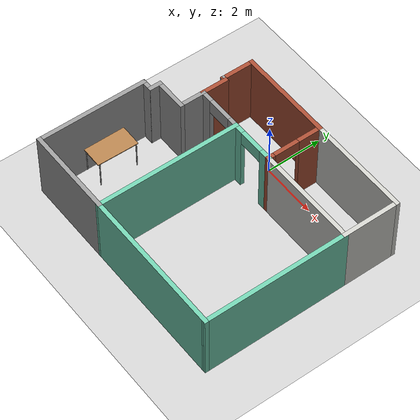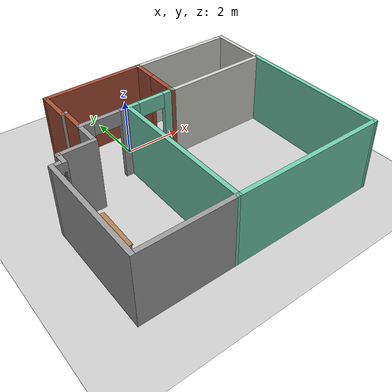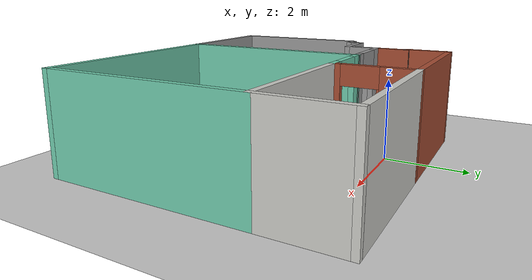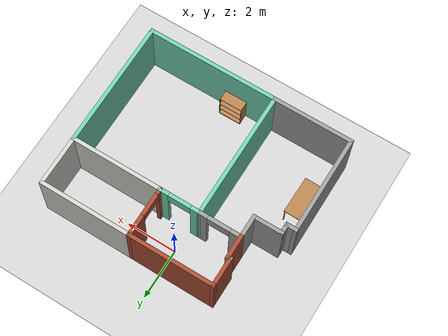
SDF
<sdf version="1.6">
 <world name="default">
  <plugin name="welcome_message" filename="libwelcome_message.so"/>
  <light name="sun" type="directional">
   <pose>0 0 10 0 -0 0</pose>
   <diffuse>0.8 0.8 0.8 1</diffuse>
   <specular>0.2 0.2 0.2 1</specular>
   <attenuation>
    <range>1000</range>
    <constant>0.9</constant>
    <linear>0.01</linear>
    <quadratic>0.001</quadratic>
   </attenuation>
   <direction>-0.5 0.1 -0.9</direction>
  </light>
  <model name="ground_plane">
   <static>1</static>
   <link name="link">
    <collision name="collision">
     <geometry><plane><normal>0 0 1</normal><size>100 100</size></plane></geometry>
     <surface><friction><ode><mu>100</mu><mu2>50</mu2></ode></friction></surface>
    </collision>
    <visual name="visual">
     <cast_shadows>0</cast_shadows>
     <geometry><plane><normal>0 0 1</normal><size>100 100</size></plane></geometry>
     <material>
      <script><uri>file://media/materials/scripts/gazebo.material</uri><name>Gazebo/Grey</name></script>
     </material>
    </visual>
   </link>
  </model>
  <gravity>0 0 -9.8</gravity>
  <magnetic_field>6e-06 2.3e-05 -4.2e-05</magnetic_field>
  <atmosphere type="adiabatic"/>
  <physics name="default_physics" default="0" type="ode">
   <max_step_size>0.001</max_step_size>
   <real_time_factor>1</real_time_factor>
   <real_time_update_rate>1000</real_time_update_rate>
  </physics>
  <scene><ambient>0.4 0.4 0.4 1</ambient><background>0.7 0.7 0.7 1</background><shadows>1</shadows></scene>
  <spherical_coordinates>
   <surface_model>EARTH_WGS84</surface_model>
   <latitude_deg>0</latitude_deg>
   <longitude_deg>0</longitude_deg>
   <elevation>0</elevation>
   <heading_deg>0</heading_deg>
  </spherical_coordinates>
  <model name="model">
   <pose>0.62405 -2.53382 0 0 -0 0</pose>
   <link name="Wall_24">
    <collision name="Wall_24_Collision">
     <geometry><box><size>1.25 0.15 2.5</size></box></geometry>
     <pose>0 0 1.25 0 -0 0</pose>
    </collision>
    <visual name="Wall_24_Visual">
     <pose>0 0 1.25 0 -0 0</pose>
     <geometry><box><size>1.25 0.15 2.5</size></box></geometry>
     <material>
      <script><uri>file://media/materials/scripts/gazebo.material</uri><name>Gazebo/Bricks</name></script>
      <ambient>1 1 1 1</ambient>
     </material>
     <meta><layer>0</layer></meta>
    </visual>
    <pose>-2.79996 2.95018 0 0 0 -1.5708</pose>
   </link>
   <link name="Wall_26">
    <collision name="Wall_26_Collision">
     <geometry><box><size>0.25 0.15 2.5</size></box></geometry>
     <pose>0 0 1.25 0 -0 0</pose>
    </collision>
    <visual name="Wall_26_Visual">
     <pose>0 0 1.25 0 -0 0</pose>
     <geometry><box><size>0.25 0.15 2.5</size></box></geometry>
     <material>
      <script><uri>file://media/materials/scripts/gazebo.material</uri><name>Gazebo/Grey</name></script>
      <ambient>1 1 1 1</ambient>
     </material>
     <meta><layer>0</layer></meta>
    </visual>
    <pose>-2.74996 2.40017 0 0 -0 0</pose>
   </link>
   <link name="Wall_27">
    <collision name="Wall_27_Collision">
     <geometry><box><size>1 0.15 2.5</size></box></geometry>
     <pose>0 0 1.25 0 -0 0</pose>
    </collision>
    <visual name="Wall_27_Visual">
     <pose>0 0 1.25 0 -0 0</pose>
     <geometry><box><size>1 0.15 2.5</size></box></geometry>
     <material>
      <script><uri>file://media/materials/scripts/gazebo.material</uri><name>Gazebo/Bricks</name></script>
      <ambient>1 1 1 1</ambient>
     </material>
     <meta><layer>0</layer></meta>
    </visual>
    <pose>-2.69996 1.97517 0 0 0 -1.5708</pose>
   </link>
   <link name="Wall_28">
    <pose>-1.89996 1.55018 0 0 -0 0</pose>
    <visual name="Wall_28_Visual_0">
     <pose>-0.625185 0 1.25 0 -0 0</pose>
     <geometry><box><size>0.49963 0.15 2.5</size></box></geometry>
     <material>
      <script><uri>file://media/materials/scripts/gazebo.material</uri><name>Gazebo/Grey</name></script>
      <ambient>1 1 1 1</ambient>
     </material>
     <meta><layer>0</layer></meta>
    </visual>
    <collision name="Wall_28_Collision_0">
     <geometry><box><size>0.49963 0.15 2.5</size></box></geometry>
     <pose>-0.625185 0 1.25 0 -0 0</pose>
    </collision>
    <visual name="Wall_28_Visual_1">
     <pose>0.699815 0 1.25 0 -0 0</pose>
     <geometry><box><size>0.35037 0.15 2.5</size></box></geometry>
     <material>
      <script><uri>file://media/materials/scripts/gazebo.material</uri><name>Gazebo/Grey</name></script>
      <ambient>1 1 1 1</ambient>
     </material>
     <meta><layer>0</layer></meta>
    </visual>
    <collision name="Wall_28_Collision_1">
     <geometry><box><size>0.35037 0.15 2.5</size></box></geometry>
     <pose>0.699815 0 1.25 0 -0 0</pose>
    </collision>
    <visual name="Wall_28_Visual_2">
     <pose>0.07463 0 2.25 0 -0 0</pose>
     <geometry><box><size>0.9 0.15 0.5</size></box></geometry>
     <material>
      <script><uri>file://media/materials/scripts/gazebo.material</uri><name>Gazebo/Grey</name></script>
      <ambient>1 1 1 1</ambient>
     </material>
     <meta><layer>0</layer></meta>
    </visual>
    <collision name="Wall_28_Collision_2">
     <geometry><box><size>0.9 0.15 0.5</size></box></geometry>
     <pose>0.07463 0 2.25 0 -0 0</pose>
    </collision>
   </link>
   <link name="Wall_30">
    <collision name="Wall_30_Collision">
     <geometry><box><size>1 0.15 2.5</size></box></geometry>
     <pose>0 0 1.25 0 -0 0</pose>
    </collision>
    <visual name="Wall_30_Visual">
     <pose>0 0 1.25 0 -0 0</pose>
     <geometry><box><size>1 0.15 2.5</size></box></geometry>
     <material>
      <script><uri>file://media/materials/scripts/gazebo.material</uri><name>Gazebo/Grey</name></script>
      <ambient>1 1 1 1</ambient>
     </material>
     <meta><layer>0</layer></meta>
    </visual>
    <pose>-2.69996 1.12518 0 0 0 -1.5708</pose>
   </link>
   <link name="Wall_32">
    <collision name="Wall_32_Collision">
     <geometry><box><size>1.25 0.15 2.5</size></box></geometry>
     <pose>0 0 1.25 0 -0 0</pose>
    </collision>
    <visual name="Wall_32_Visual">
     <pose>0 0 1.25 0 -0 0</pose>
     <geometry><box><size>1.25 0.15 2.5</size></box></geometry>
     <material>
      <script><uri>file://media/materials/scripts/gazebo.material</uri><name>Gazebo/Grey</name></script>
      <ambient>1 1 1 1</ambient>
     </material>
     <meta><layer>0</layer></meta>
    </visual>
    <pose>-3.24996 0.700175 0 0 -0 3.14159</pose>
   </link>
   <link name="Wall_33">
    <collision name="Wall_33_Collision">
     <geometry><box><size>0.5 0.15 2.5</size></box></geometry>
     <pose>0 0 1.25 0 -0 0</pose>
    </collision>
    <visual name="Wall_33_Visual">
     <pose>0 0 1.25 0 -0 0</pose>
     <geometry><box><size>0.5 0.15 2.5</size></box></geometry>
     <material>
      <script><uri>file://media/materials/scripts/gazebo.material</uri><name>Gazebo/Grey</name></script>
      <ambient>1 1 1 1</ambient>
     </material>
     <meta><layer>0</layer></meta>
    </visual>
    <pose>-3.79996 0.525175 0 0 0 -1.5708</pose>
   </link>
   <link name="Wall_34">
    <collision name="Wall_34_Collision">
     <geometry><box><size>0.5 0.15 2.5</size></box></geometry>
     <pose>0 0 1.25 0 -0 0</pose>
    </collision>
    <visual name="Wall_34_Visual">
     <pose>0 0 1.25 0 -0 0</pose>
     <geometry><box><size>0.5 0.15 2.5</size></box></geometry>
     <material>
      <script><uri>file://media/materials/scripts/gazebo.material</uri><name>Gazebo/Grey</name></script>
      <ambient>1 1 1 1</ambient>
     </material>
     <meta><layer>0</layer></meta>
    </visual>
    <pose>-3.97496 0.350175 0 0 -0 3.14159</pose>
   </link>
   <link name="Wall_35">
    <collision name="Wall_35_Collision">
     <geometry><box><size>4 0.15 2.5</size></box></geometry>
     <pose>0 0 1.25 0 -0 0</pose>
    </collision>
    <visual name="Wall_35_Visual">
     <pose>0 0 1.25 0 -0 0</pose>
     <geometry><box><size>4 0.15 2.5</size></box></geometry>
     <material>
      <script><uri>file://media/materials/scripts/gazebo.material</uri><name>Gazebo/Grey</name></script>
      <ambient>1 1 1 1</ambient>
     </material>
     <meta><layer>0</layer></meta>
    </visual>
    <pose>-4.14996 -1.57482 0 0 0 -1.5708</pose>
   </link>
   <link name="Wall_36">
    <collision name="Wall_36_Collision">
     <geometry><box><size>3.25 0.15 2.5</size></box></geometry>
     <pose>0 0 1.25 0 -0 0</pose>
    </collision>
    <visual name="Wall_36_Visual">
     <pose>0 0 1.25 0 -0 0</pose>
     <geometry><box><size>3.25 0.15 2.5</size></box></geometry>
     <material>
      <script><uri>file://media/materials/scripts/gazebo.material</uri><name>Gazebo/Grey</name></script>
      <ambient>1 1 1 1</ambient>
     </material>
     <meta><layer>0</layer></meta>
    </visual>
    <pose>-2.59996 -3.49982 0 0 -0 0</pose>
   </link>
   <link name="Wall_37">
    <collision name="Wall_37_Collision">
     <geometry><box><size>5.2 0.15 2.5</size></box></geometry>
     <pose>0 0 1.25 0 -0 0</pose>
    </collision>
    <visual name="Wall_37_Visual">
     <pose>0 0 1.25 0 -0 0</pose>
     <geometry><box><size>5.2 0.15 2.5</size></box></geometry>
     <material>
      <script><uri>file://media/materials/scripts/gazebo.material</uri><name>Gazebo/Grey</name></script>
      <ambient>0.435294 0.796078 0.67451 1</ambient>
     </material>
     <meta><layer>0</layer></meta>
    </visual>
    <pose>-1.04996 -0.974825 0 0 -0 1.5708</pose>
   </link>
   <link name="Wall_39">
    <pose>0.549953 2.52482 0 0 -0 1.5708</pose>
    <visual name="Wall_39_Visual_0">
     <pose>-0.906032 0 1.25 0 -0 0</pose>
     <geometry><box><size>0.288289 0.15 2.5</size></box></geometry>
     <material>
      <script><uri>file://media/materials/scripts/gazebo.material</uri><name>Gazebo/Bricks</name></script>
      <ambient>1 1 1 1</ambient>
     </material>
     <meta><layer>0</layer></meta>
    </visual>
    <collision name="Wall_39_Collision_0">
     <geometry><box><size>0.288289 0.15 2.5</size></box></geometry>
     <pose>-0.906032 0 1.25 0 -0 0</pose>
    </collision>
    <visual name="Wall_39_Visual_1">
     <pose>0.594145 0 1.25 0 -0 0</pose>
     <geometry><box><size>0.912064 0.15 2.5</size></box></geometry>
     <material>
      <script><uri>file://media/materials/scripts/gazebo.material</uri><name>Gazebo/Bricks</name></script>
      <ambient>1 1 1 1</ambient>
     </material>
     <meta><layer>0</layer></meta>
    </visual>
    <collision name="Wall_39_Collision_1">
     <geometry><box><size>0.912064 0.15 2.5</size></box></geometry>
     <pose>0.594145 0 1.25 0 -0 0</pose>
    </collision>
    <visual name="Wall_39_Visual_2">
     <pose>-0.311887 0 2.25 0 -0 0</pose>
     <geometry><box><size>0.9 0.15 0.5</size></box></geometry>
     <material>
      <script><uri>file://media/materials/scripts/gazebo.material</uri><name>Gazebo/Bricks</name></script>
      <ambient>1 1 1 1</ambient>
     </material>
     <meta><layer>0</layer></meta>
    </visual>
    <collision name="Wall_39_Collision_2">
     <geometry><box><size>0.9 0.15 0.5</size></box></geometry>
     <pose>-0.311887 0 2.25 0 -0 0</pose>
    </collision>
   </link>
   <link name="Wall_41">
    <collision name="Wall_41_Collision">
     <geometry><box><size>3.5 0.15 2.5</size></box></geometry>
     <pose>0 0 1.25 0 -0 0</pose>
    </collision>
    <visual name="Wall_41_Visual">
     <pose>0 0 1.25 0 -0 0</pose>
     <geometry><box><size>3.5 0.15 2.5</size></box></geometry>
     <material>
      <script><uri>file://media/materials/scripts/gazebo.material</uri><name>Gazebo/Bricks</name></script>
      <ambient>1 1 1 1</ambient>
     </material>
     <meta><layer>0</layer></meta>
    </visual>
    <pose>-1.125 3.5 0 0 -0 3.14149</pose>
   </link>
   <link name="Wall_44">
    <pose>-0.250002 1.55 0 0 0 -0.000221</pose>
    <visual name="Wall_44_Visual_0">
     <pose>-0.664415 0 1.25 0 -0 0</pose>
     <geometry><box><size>0.42108 0.15 2.5</size></box></geometry>
     <material>
      <script><uri>file://media/materials/scripts/gazebo.material</uri><name>Gazebo/Grey</name></script>
      <ambient>0.435294 0.796078 0.67451 1</ambient>
     </material>
     <meta><layer>0</layer></meta>
    </visual>
    <collision name="Wall_44_Collision_0">
     <geometry><box><size>0.42108 0.15 2.5</size></box></geometry>
     <pose>-0.664415 0 1.25 0 -0 0</pose>
    </collision>
    <visual name="Wall_44_Visual_1">
     <pose>0.66054 0 1.25 0 -0 0</pose>
     <geometry><box><size>0.42883 0.15 2.5</size></box></geometry>
     <material>
      <script><uri>file://media/materials/scripts/gazebo.material</uri><name>Gazebo/Grey</name></script>
      <ambient>0.435294 0.796078 0.67451 1</ambient>
     </material>
     <meta><layer>0</layer></meta>
    </visual>
    <collision name="Wall_44_Collision_1">
     <geometry><box><size>0.42883 0.15 2.5</size></box></geometry>
     <pose>0.66054 0 1.25 0 -0 0</pose>
    </collision>
    <visual name="Wall_44_Visual_2">
     <pose>-0.003875 0 2.25 0 -0 0</pose>
     <geometry><box><size>0.9 0.15 0.5</size></box></geometry>
     <material>
      <script><uri>file://media/materials/scripts/gazebo.material</uri><name>Gazebo/Grey</name></script>
      <ambient>0.435294 0.796078 0.67451 1</ambient>
     </material>
     <meta><layer>0</layer></meta>
    </visual>
    <collision name="Wall_44_Collision_2">
     <geometry><box><size>0.9 0.15 0.5</size></box></geometry>
     <pose>-0.003875 0 2.25 0 -0 0</pose>
    </collision>
   </link>
   <link name="Wall_45">
    <collision name="Wall_45_Collision">
     <geometry><box><size>3.75 0.15 2.5</size></box></geometry>
     <pose>0 0 1.25 0 -0 0</pose>
    </collision>
    <visual name="Wall_45_Visual">
     <pose>0 0 1.25 0 -0 0</pose>
     <geometry><box><size>3.75 0.15 2.5</size></box></geometry>
     <material>
      <script><uri>file://media/materials/scripts/gazebo.material</uri><name>Gazebo/CeilingTiled</name></script>
      <ambient>0.435294 0.796078 0.67451 1</ambient>
     </material>
     <meta><layer>0</layer></meta>
    </visual>
    <pose>2.34995 1.54982 0 0 -0 0</pose>
   </link>
   <link name="Wall_46">
    <collision name="Wall_46_Collision">
     <geometry><box><size>2.1 0.15 2.5</size></box></geometry>
     <pose>0 0 1.25 0 -0 0</pose>
    </collision>
    <visual name="Wall_46_Visual">
     <pose>0 0 1.25 0 -0 0</pose>
     <geometry><box><size>2.1 0.15 2.5</size></box></geometry>
     <material>
      <script><uri>file://media/materials/scripts/gazebo.material</uri><name>Gazebo/CeilingTiled</name></script>
      <ambient>1 1 1 1</ambient>
     </material>
     <meta><layer>0</layer></meta>
    </visual>
    <pose>4.14995 2.52482 0 0 -0 1.5708</pose>
   </link>
   <link name="Wall_48">
    <collision name="Wall_48_Collision">
     <geometry><box><size>3.75 0.15 2.5</size></box></geometry>
     <pose>0 0 1.25 0 -0 0</pose>
    </collision>
    <visual name="Wall_48_Visual">
     <pose>0 0 1.25 0 -0 0</pose>
     <geometry><box><size>3.75 0.15 2.5</size></box></geometry>
     <material>
      <script><uri>file://media/materials/scripts/gazebo.material</uri><name>Gazebo/CeilingTiled</name></script>
      <ambient>1 1 1 1</ambient>
     </material>
     <meta><layer>0</layer></meta>
    </visual>
    <pose>2.34995 3.49982 0 0 -0 0</pose>
   </link>
   <link name="Wall_50">
    <collision name="Wall_50_Collision">
     <geometry><box><size>5.2 0.15 2.5</size></box></geometry>
     <pose>0 0 1.25 0 -0 0</pose>
    </collision>
    <visual name="Wall_50_Visual">
     <pose>0 0 1.25 0 -0 0</pose>
     <geometry><box><size>5.2 0.15 2.5</size></box></geometry>
     <material>
      <script><uri>file://media/materials/scripts/gazebo.material</uri><name>Gazebo/Grey</name></script>
      <ambient>0.435294 0.796078 0.67451 1</ambient>
     </material>
     <meta><layer>0</layer></meta>
    </visual>
    <pose>4.14995 -0.975178 0 0 0 -1.5708</pose>
   </link>
   <link name="Wall_52">
    <collision name="Wall_52_Collision">
     <geometry><box><size>5.34991 0.15 2.5</size></box></geometry>
     <pose>0 0 1.25 0 -0 0</pose>
    </collision>
    <visual name="Wall_52_Visual">
     <pose>0 0 1.25 0 -0 0</pose>
     <geometry><box><size>5.34991 0.15 2.5</size></box></geometry>
     <material>
      <script><uri>file://media/materials/scripts/gazebo.material</uri><name>Gazebo/Grey</name></script>
      <ambient>0.435294 0.796078 0.67451 1</ambient>
     </material>
     <meta><layer>0</layer></meta>
    </visual>
    <pose>1.55 -3.5 0 0 0 -6.8e-05</pose>
   </link>
   <static>1</static>
  </model>
  <model name="bookshelf">
   <static>1</static>
   <link name="link">
    <inertial><mass>1</mass></inertial>
    <collision name="back">
     <pose>0 0.005 0.6 0 -0 0</pose>
     <geometry><box><size>0.9 0.01 1.2</size></box></geometry>
    </collision>
    <visual name="visual1">
     <pose>0 0.005 0.6 0 -0 0</pose>
     <geometry><box><size>0.9 0.01 1.2</size></box></geometry>
     <material>
      <script><uri>file://media/materials/scripts/gazebo.material</uri><name>Gazebo/Wood</name></script>
     </material>
    </visual>
    <collision name="left_side">
     <pose>0.45 -0.195 0.6 0 -0 0</pose>
     <geometry><box><size>0.02 0.4 1.2</size></box></geometry>
    </collision>
    <visual name="visual2">
     <pose>0.45 -0.195 0.6 0 -0 0</pose>
     <geometry><box><size>0.02 0.4 1.2</size></box></geometry>
     <material>
      <script><uri>file://media/materials/scripts/gazebo.material</uri><name>Gazebo/Wood</name></script>
     </material>
    </visual>
    <collision name="right_side">
     <pose>-0.45 -0.195 0.6 0 -0 0</pose>
     <geometry><box><size>0.02 0.4 1.2</size></box></geometry>
    </collision>
    <visual name="visual3">
     <pose>-0.45 -0.195 0.6 0 -0 0</pose>
     <geometry><box><size>0.02 0.4 1.2</size></box></geometry>
     <material>
      <script><uri>file://media/materials/scripts/gazebo.material</uri><name>Gazebo/Wood</name></script>
     </material>
    </visual>
    <collision name="bottom">
     <pose>0 -0.195 0.03 0 -0 0</pose>
     <geometry><box><size>0.88 0.4 0.06</size></box></geometry>
    </collision>
    <visual name="visual4">
     <pose>0 -0.195 0.03 0 -0 0</pose>
     <geometry><box><size>0.88 0.4 0.06</size></box></geometry>
     <material>
      <script><uri>file://media/materials/scripts/gazebo.material</uri><name>Gazebo/Wood</name></script>
     </material>
    </visual>
    <collision name="top">
     <pose>0 -0.195 1.19 0 -0 0</pose>
     <geometry><box><size>0.88 0.4 0.02</size></box></geometry>
    </collision>
    <visual name="visual5">
     <pose>0 -0.195 1.19 0 -0 0</pose>
     <geometry><box><size>0.88 0.4 0.02</size></box></geometry>
     <material>
      <script><uri>file://media/materials/scripts/gazebo.material</uri><name>Gazebo/Wood</name></script>
     </material>
    </visual>
    <collision name="low_shelf">
     <pose>0 -0.195 0.43 0 -0 0</pose>
     <geometry><box><size>0.88 0.4 0.02</size></box></geometry>
    </collision>
    <visual name="visual6">
     <pose>0 -0.195 0.43 0 -0 0</pose>
     <geometry><box><size>0.88 0.4 0.02</size></box></geometry>
     <material>
      <script><uri>file://media/materials/scripts/gazebo.material</uri><name>Gazebo/Wood</name></script>
     </material>
    </visual>
    <collision name="high_shelf">
     <pose>0 -0.195 0.8 0 -0 0</pose>
     <geometry><box><size>0.88 0.4 0.02</size></box></geometry>
    </collision>
    <visual name="visual7">
     <pose>0 -0.195 0.8 0 -0 0</pose>
     <geometry><box><size>0.88 0.4 0.02</size></box></geometry>
     <material>
      <script><uri>file://media/materials/scripts/gazebo.material</uri><name>Gazebo/Wood</name></script>
     </material>
    </visual>
   </link>
   <pose>1.09492 -5.93592 -0.023969 5.4e-05 0.012588 -3.1373</pose>
  </model>
  <model name="table_0">
   <static>1</static>
   <link name="link">
    <collision name="surface">
     <pose>0 0 1 0 -0 0</pose>
     <geometry><box><size>1.5 0.8 0.03</size></box></geometry>
     <surface><friction><ode><mu>0.6</mu><mu2>0.6</mu2></ode></friction></surface>
    </collision>
    <visual name="visual1">
     <pose>0 0 1 0 -0 0</pose>
     <geometry><box><size>1.5 0.8 0.03</size></box></geometry>
     <material>
      <script><uri>file://media/materials/scripts/gazebo.material</uri><name>Gazebo/Wood</name></script>
     </material>
    </visual>
    <collision name="front_left_leg">
     <pose>0.68 0.38 0.5 0 -0 0</pose>
     <geometry><cylinder><radius>0.02</radius><length>1</length></cylinder></geometry>
    </collision>
    <visual name="front_left_leg">
     <pose>0.68 0.38 0.5 0 -0 0</pose>
     <geometry><cylinder><radius>0.02</radius><length>1</length></cylinder></geometry>
     <material>
      <script><uri>file://media/materials/scripts/gazebo.material</uri><name>Gazebo/Grey</name></script>
     </material>
    </visual>
    <collision name="front_right_leg">
     <pose>0.68 -0.38 0.5 0 -0 0</pose>
     <geometry><cylinder><radius>0.02</radius><length>1</length></cylinder></geometry>
    </collision>
    <visual name="front_right_leg">
     <pose>0.68 -0.38 0.5 0 -0 0</pose>
     <geometry><cylinder><radius>0.02</radius><length>1</length></cylinder></geometry>
     <material>
      <script><uri>file://media/materials/scripts/gazebo.material</uri><name>Gazebo/Grey</name></script>
     </material>
    </visual>
    <collision name="back_right_leg">
     <pose>-0.68 -0.38 0.5 0 -0 0</pose>
     <geometry><cylinder><radius>0.02</radius><length>1</length></cylinder></geometry>
    </collision>
    <visual name="back_right_leg">
     <pose>-0.68 -0.38 0.5 0 -0 0</pose>
     <geometry><cylinder><radius>0.02</radius><length>1</length></cylinder></geometry>
     <material>
      <script><uri>file://media/materials/scripts/gazebo.material</uri><name>Gazebo/Grey</name></script>
     </material>
    </visual>
    <collision name="back_left_leg">
     <pose>-0.68 0.38 0.5 0 -0 0</pose>
     <geometry><cylinder><radius>0.02</radius><length>1</length></cylinder></geometry>
    </collision>
    <visual name="back_left_leg">
     <pose>-0.68 0.38 0.5 0 -0 0</pose>
     <geometry><cylinder><radius>0.02</radius><length>1</length></cylinder></geometry>
     <material>
      <script><uri>file://media/materials/scripts/gazebo.material</uri><name>Gazebo/Grey</name></script>
     </material>
    </visual>
   </link>
   <pose>-3.06582 -3.81392 0 0 0 -1.58639</pose>
  </model>
 </world>
</sdf>
